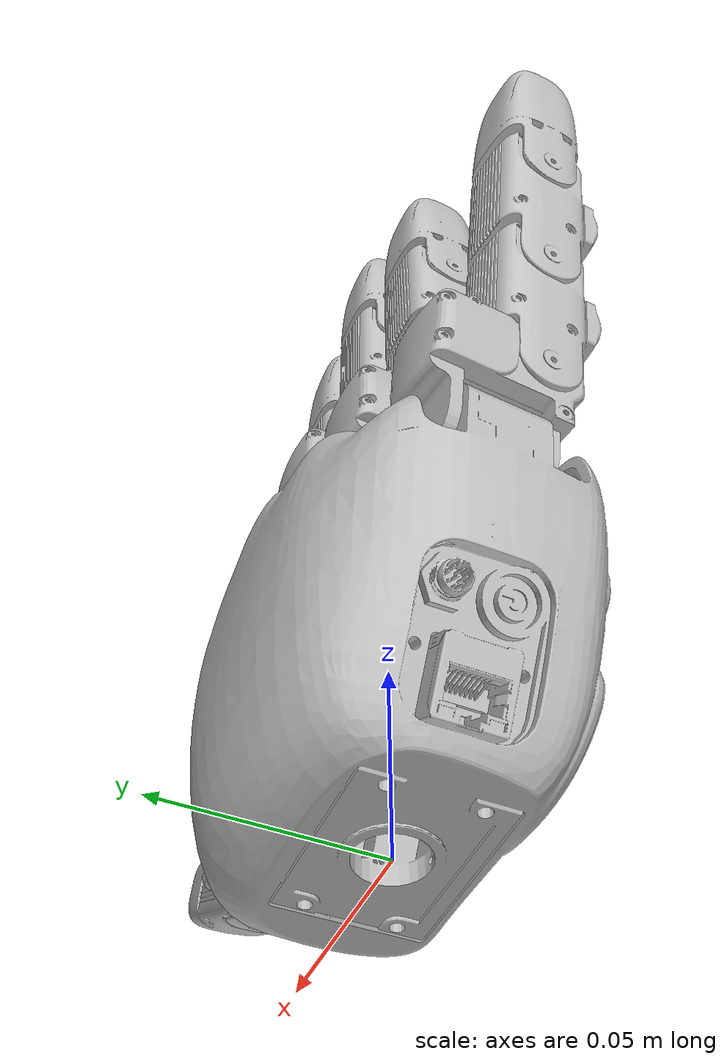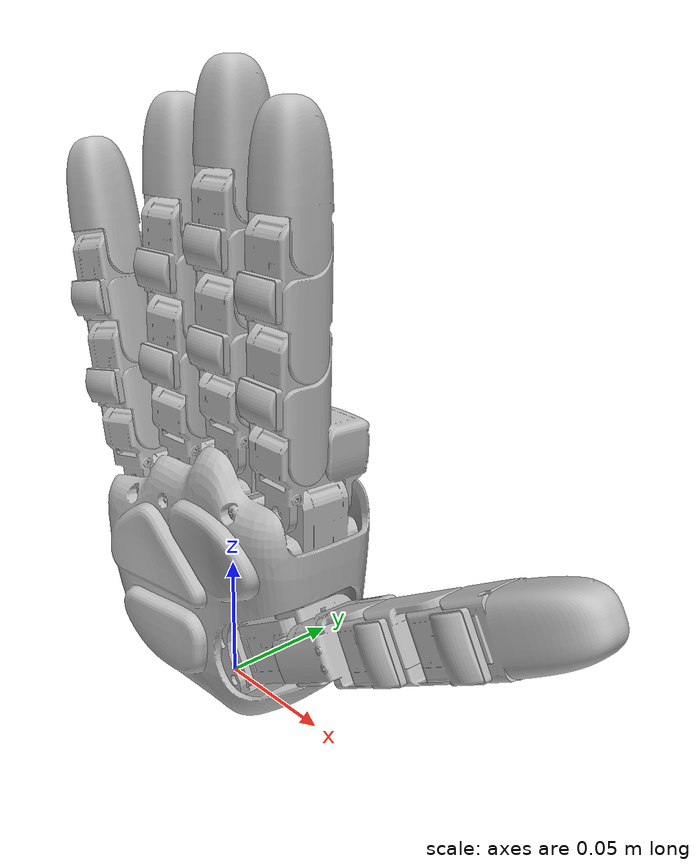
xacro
<?xml version="1.0"?>
<robot xmlns:xacro="http://www.ros.org/wiki/xacro" name="allegro_hand_v6">
    <xacro:arg name="ros2_control_hardware_type" default="hardware" />
    <xacro:arg name="hand" default="right" />
    <xacro:arg name="ah_prefix" default="" />
    <xacro:arg name="io_interface_descriptor" default="modbus_tcp:192.168.40.100:502" />
    <xacro:arg name="hand_id" default="1" />

    <xacro:property name="hand_arg" value="$(arg hand)"/>

    <xacro:if value="${hand_arg == 'right'}">
        <xacro:include filename="$(find allegro_hand_v6_description)/urdf/allegro_hand_v6_right.urdf.xacro" />
    </xacro:if>

    <xacro:if value="${hand_arg == 'left'}">
        <xacro:include filename="$(find allegro_hand_v6_description)/urdf/allegro_hand_v6_left.urdf.xacro" />
    </xacro:if>

    <xacro:include filename="$(find allegro_hand_v6_bringup)/config/single_hand/allegro_hand_v6_1.ros2_control.xacro" />
    <xacro:allegro_hand_v6_ros2_control name="allegro_hand" prefix="$(arg ah_prefix)" ros2_control_hardware_type="$(arg ros2_control_hardware_type)" io_interface_descriptor="$(arg io_interface_descriptor)" hand_id="$(arg hand_id)" hand="$(arg hand)"/>
</robot>

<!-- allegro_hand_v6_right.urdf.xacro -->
<robot xmlns:xacro="http://www.ros.org/wiki/xacro" name="allegro_hand_v6_right">
  <xacro:include filename="$(find allegro_hand_v6_description)/urdf/allegro_hand_v6_right.urdf" />
</robot>

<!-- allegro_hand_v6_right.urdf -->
<robot name="allegro_hand_v6_right">
  <link name="base_link">
    <inertial>
      <origin xyz="0.00184230424029894 -0.00313698136551967 0.0554922594614504" rpy="0 0 0" />
      <mass value="0.450028226555743" />
      <inertia ixx="0.000147963501718496" ixy="-1.56300579074899E-06" ixz="-2.49352924280155E-05" iyy="0.000305633870983255" iyz="5.63021652290232E-07" izz="0.000179183478753193" />
    </inertial>
    <visual>
      <origin xyz="0 0 0" rpy="0 0 0" />
      <geometry>
        <mesh filename="package://allegro_hand_v6_description/meshes/Palm.STL" />
      </geometry>
      <material name="">
        <color rgba="0.752941176470588 0.752941176470588 0.752941176470588 1" />
      </material>
    </visual>
    <collision>
      <origin xyz="0 0 0" rpy="0 0 0" />
      <geometry>
        <mesh filename="package://allegro_hand_v6_description/meshes/Palm.STL" />
      </geometry>
    </collision>
  </link>
  <link name="Finger01_Link01">
    <inertial>
      <origin xyz="-0.0239829867858055 -0.000306359201455619 -0.0114422632777329" rpy="0 0 0" />
      <mass value="0.0417463971762565" />
      <inertia ixx="4.44015486690548E-06" ixy="1.5758654259387E-07" ixz="-2.64990330601882E-08" iyy="1.99009103900125E-06" iyz="4.1409767136071E-09" izz="3.75496404596589E-06" />
    </inertial>
    <visual>
      <origin xyz="0 0 0" rpy="0 0 0" />
      <geometry>
        <mesh filename="package://allegro_hand_v6_description/meshes/Finger01_Link01.STL" />
      </geometry>
      <material name="">
        <color rgba="0.752941176470588 0.752941176470588 0.752941176470588 1" />
      </material>
    </visual>
    <collision>
      <origin xyz="0 0 0" rpy="0 0 0" />
      <geometry>
        <mesh filename="package://allegro_hand_v6_description/meshes/Finger01_Link01.STL" />
      </geometry>
    </collision>
  </link>
  <joint name="joint00" type="revolute">
    <origin xyz="0.0515458963924172 -0.00186273945692013 0.0252954584404881" rpy="-3.12285472680256 0.523294580872748 3.14159265358979" />
    <parent link="base_link" />
    <child link="Finger01_Link01" />
    <axis xyz="0 0 1" />
    <limit lower="-0.0349066" upper="1.6580628" effort="15" velocity="7" />
  </joint>
  <link name="Finger01_Link02">
    <inertial>
      <origin xyz="-0.000134853955672323 -0.00250894377660173 0.0250674884215867" rpy="0 0 0" />
      <mass value="0.0104892099893563" />
      <inertia ixx="8.62204829341335E-07" ixy="8.35499631624565E-09" ixz="-8.76207386578638E-08" iyy="8.43158028428824E-07" iyz="1.02386301679916E-07" izz="5.63497147697149E-07" />
    </inertial>
    <visual>
      <origin xyz="0 0 0" rpy="0 0 0" />
      <geometry>
        <mesh filename="package://allegro_hand_v6_description/meshes/Finger01_Link02.STL" />
      </geometry>
      <material name="">
        <color rgba="0.752941176470588 0.752941176470588 0.752941176470588 1" />
      </material>
    </visual>
    <collision>
      <origin xyz="0 0 0" rpy="0 0 0" />
      <geometry>
        <mesh filename="package://allegro_hand_v6_description/meshes/Finger01_Link02.STL" />
      </geometry>
    </collision>
  </link>
  <joint name="joint01" type="revolute">
    <origin xyz="-0.0166177655792123 -0.0120457406229064 -0.0117000000000025" rpy="-1.57079632679487 -1.55204852359714 1.60326086932927" />
    <parent link="Finger01_Link01" />
    <child link="Finger01_Link02" />
    <axis xyz="0 0 1" />
    <limit lower="-1.6580628" upper="1.6580628" effort="15" velocity="7" />
  </joint>
  <link name="Finger01_Link03">
    <inertial>
      <origin xyz="-0.0113384084768696 -0.000301529767556679 -0.0116212236141954" rpy="0 0 0" />
      <mass value="0.0356042266490495" />
      <inertia ixx="1.53411371984515E-06" ixy="-1.79788493596429E-07" ixz="-1.20209060375391E-07" iyy="4.57635845809962E-06" iyz="2.95776700567886E-08" izz="5.03437303700778E-06" />
    </inertial>
    <visual>
      <origin xyz="0 0 0" rpy="0 0 0" />
      <geometry>
        <mesh filename="package://allegro_hand_v6_description/meshes/Finger01_Link03.STL" />
      </geometry>
      <material name="">
        <color rgba="0.752941176470588 0.752941176470588 0.752941176470588 1" />
      </material>
    </visual>
    <collision>
      <origin xyz="0 0 0" rpy="0 0 0" />
      <geometry>
        <mesh filename="package://allegro_hand_v6_description/meshes/Finger01_Link03.STL" />
      </geometry>
    </collision>
  </link>
  <joint name="joint02" type="revolute">
    <origin xyz="0.0121978560340643 -0.000228709800638669 0.0402" rpy="-1.5707963267949 1.53833178426049 -1.58954412999264" />
    <parent link="Finger01_Link02" />
    <child link="Finger01_Link03" />
    <axis xyz="0 0 1" />
    <limit lower="-0.1745329" upper="1.3089969" effort="15" velocity="7" />
  </joint>
  <link name="Finger01_Link04">
    <inertial>
      <origin xyz="-0.018416915594039 -0.000283029245951282 -0.0116267997314829" rpy="0 0 0" />
      <mass value="0.0472610997534158" />
      <inertia ixx="2.33532626479402E-06" ixy="-1.22709886487407E-07" ixz="-1.24909563346313E-07" iyy="5.08634358682374E-06" iyz="2.91951245111122E-08" izz="5.06514069278925E-06" />
    </inertial>
    <visual>
      <origin xyz="0 0 0" rpy="0 0 0" />
      <geometry>
        <mesh filename="package://allegro_hand_v6_description/meshes/Finger01_Link04.STL" />
      </geometry>
      <material name="">
        <color rgba="0.752941176470588 0.752941176470588 0.752941176470588 1" />
      </material>
    </visual>
    <collision>
      <origin xyz="0 0 0" rpy="0 0 0" />
      <geometry>
        <mesh filename="package://allegro_hand_v6_description/meshes/Finger01_Link04.STL" />
      </geometry>
    </collision>
  </link>
  <joint name="joint03" type="revolute">
    <origin xyz="-0.0354812940922435 -0.00115228882652339 0" rpy="0 0 0" />
    <parent link="Finger01_Link03" />
    <child link="Finger01_Link04" />
    <axis xyz="0 0 1" />
    <limit lower="-0.1745329" upper="1.3962634" effort="15" velocity="7" />
  </joint>
  <link name="Finger02_Link01">
    <inertial>
      <origin xyz="0.000709041633831113 0.0185170806102581 0.0157296116249979" rpy="0 0 0" />
      <mass value="0.0362529514361211" />
      <inertia ixx="4.3940641429617E-06" ixy="2.01762707788196E-08" ixz="1.2115858104399E-07" iyy="3.39720068440709E-06" iyz="-1.7605735358543E-07" izz="2.1054632083192E-06" />
    </inertial>
    <visual>
      <origin xyz="0 0 0" rpy="0 0 0" />
      <geometry>
        <mesh filename="package://allegro_hand_v6_description/meshes/Finger02_Link01.STL" />
      </geometry>
      <material name="">
        <color rgba="0.752941176470588 0.752941176470588 0.752941176470588 1" />
      </material>
    </visual>
    <collision>
      <origin xyz="0 0 0" rpy="0 0 0" />
      <geometry>
        <mesh filename="package://allegro_hand_v6_description/meshes/Finger02_Link01.STL" />
      </geometry>
    </collision>
  </link>
  <joint name="joint10" type="revolute">
    <origin xyz="0.0448192191986822 -0.0143208213684815 0.0915000000000002" rpy="1.5707963267949 0 3.10411021689813" />
    <parent link="base_link" />
    <child link="Finger02_Link01" />
    <axis xyz="0 0 1" />
    <limit lower="-0.3839724" upper="1.3089969" effort="15" velocity="7" />
  </joint>
  <link name="Finger02_Link02">
    <inertial>
      <origin xyz="-6.65850196290094E-05 -0.0240876562414407 0.011594529202684" rpy="0 0 0" />
      <mass value="0.0357082521169613" />
      <inertia ixx="4.58527750121543E-06" ixy="-8.07241218453705E-08" ixz="3.34683308140124E-08" iyy="1.52610964198425E-06" iyz="-1.19180956497489E-07" izz="5.03458230160598E-06" />
    </inertial>
    <visual>
      <origin xyz="0 0 0" rpy="0 0 0" />
      <geometry>
        <mesh filename="package://allegro_hand_v6_description/meshes/Finger02_Link02.STL" />
      </geometry>
      <material name="">
        <color rgba="0.752941176470588 0.752941176470588 0.752941176470588 1" />
      </material>
    </visual>
    <collision>
      <origin xyz="0 0 0" rpy="0 0 0" />
      <geometry>
        <mesh filename="package://allegro_hand_v6_description/meshes/Finger02_Link02.STL" />
      </geometry>
    </collision>
  </link>
  <joint name="joint11" type="revolute">
    <origin xyz="0.0122000000000267 0.0209999999999989 0.00490000000000196" rpy="-1.57512531986377 1.57079630572147 1.56646733372602" />
    <parent link="Finger02_Link01" />
    <child link="Finger02_Link02" />
    <axis xyz="0 0 1" />
    <limit lower="-0.0698132" upper="1.5707963" effort="15" velocity="7" />
  </joint>
  <link name="Finger02_Link03">
    <inertial>
      <origin xyz="-6.65850194792646E-05 -0.0240876562413459 0.0115945292025172" rpy="0 0 0" />
      <mass value="0.0357082521175749" />
      <inertia ixx="4.58527750122232E-06" ixy="-8.07241218559247E-08" ixz="3.3468330809611E-08" iyy="1.52610964203967E-06" iyz="-1.19180956498736E-07" izz="5.03458230167055E-06" />
    </inertial>
    <visual>
      <origin xyz="0 0 0" rpy="0 0 0" />
      <geometry>
        <mesh filename="package://allegro_hand_v6_description/meshes/Finger02_Link03.STL" />
      </geometry>
      <material name="">
        <color rgba="0.752941176470588 0.752941176470588 0.752941176470588 1" />
      </material>
    </visual>
    <collision>
      <origin xyz="0 0 0" rpy="0 0 0" />
      <geometry>
        <mesh filename="package://allegro_hand_v6_description/meshes/Finger02_Link03.STL" />
      </geometry>
    </collision>
  </link>
  <joint name="joint12" type="revolute">
    <origin xyz="0 -0.0355000000000008 0" rpy="0 0 0" />
    <parent link="Finger02_Link02" />
    <child link="Finger02_Link03" />
    <axis xyz="0 0 1" />
    <limit lower="-0.1745329" upper="1.3962634" effort="15" velocity="7" />
  </joint>
  <link name="Finger02_Link04">
    <inertial>
      <origin xyz="-0.000492316779747967 -0.0226575605376795 0.0125097134134445" rpy="0 0 0" />
      <mass value="0.0213701839615071" />
      <inertia ixx="2.42428496688208E-06" ixy="-8.66325853117961E-08" ixz="3.50586594259155E-11" iyy="1.22532835399419E-06" iyz="-8.99601789908348E-08" izz="1.80436589718125E-06" />
    </inertial>
    <visual>
      <origin xyz="0 0 0" rpy="0 0 0" />
      <geometry>
        <mesh filename="package://allegro_hand_v6_description/meshes/Finger02_Link04.STL" />
      </geometry>
      <material name="">
        <color rgba="0.752941176470588 0.752941176470588 0.752941176470588 1" />
      </material>
    </visual>
    <collision>
      <origin xyz="0 0 0" rpy="0 0 0" />
      <geometry>
        <mesh filename="package://allegro_hand_v6_description/meshes/Finger02_Link04.STL" />
      </geometry>
    </collision>
  </link>
  <joint name="joint13" type="revolute">
    <origin xyz="0 -0.0354999999999992 0" rpy="0 0 0" />
    <parent link="Finger02_Link03" />
    <child link="Finger02_Link04" />
    <axis xyz="0 0 1" />
    <limit lower="-0.1745329" upper="1.3962634" effort="15" velocity="7" />
  </joint>
  <link name="Finger03_Link01">
    <inertial>
      <origin xyz="0.000709042662020216 0.0185170814550095 0.0157296112392842" rpy="0 0 0" />
      <mass value="0.0362529543058765" />
      <inertia ixx="4.39406433407738E-06" ixy="2.0176234503521E-08" ixz="1.21158609714526E-07" iyy="3.39720096472722E-06" iyz="-1.76057555269767E-07" izz="2.10546318294146E-06" />
    </inertial>
    <visual>
      <origin xyz="0 0 0" rpy="0 0 0" />
      <geometry>
        <mesh filename="package://allegro_hand_v6_description/meshes/Finger03_Link01.STL" />
      </geometry>
      <material name="">
        <color rgba="0.752941176470588 0.752941176470588 0.752941176470588 1" />
      </material>
    </visual>
    <collision>
      <origin xyz="0 0 0" rpy="0 0 0" />
      <geometry>
        <mesh filename="package://allegro_hand_v6_description/meshes/Finger03_Link01.STL" />
      </geometry>
    </collision>
  </link>
  <joint name="joint20" type="revolute">
    <origin xyz="0.0149999999999994 -0.0132000000000003 0.103500000000001" rpy="1.5707963267949 0 3.14159265358979" />
    <parent link="base_link" />
    <child link="Finger03_Link01" />
    <axis xyz="0 0 1" />
    <limit lower="-1.134464" upper="1.134464" effort="15" velocity="7" />
  </joint>
  <link name="Finger03_Link02">
    <inertial>
      <origin xyz="-0.0240876525947505 6.65875884343237E-05 0.0115945377091467" rpy="0 0 0" />
      <mass value="0.0357082754843776" />
      <inertia ixx="1.52611057006049E-06" ixy="8.07258309320929E-08" ixz="-1.1918140232535E-07" iyy="4.58528094923996E-06" iyz="-3.34681642093523E-08" izz="5.03458674970465E-06" />
    </inertial>
    <visual>
      <origin xyz="0 0 0" rpy="0 0 0" />
      <geometry>
        <mesh filename="package://allegro_hand_v6_description/meshes/Finger03_Link02.STL" />
      </geometry>
      <material name="">
        <color rgba="0.752941176470588 0.752941176470588 0.752941176470588 1" />
      </material>
    </visual>
    <collision>
      <origin xyz="0 0 0" rpy="0 0 0" />
      <geometry>
        <mesh filename="package://allegro_hand_v6_description/meshes/Finger03_Link02.STL" />
      </geometry>
    </collision>
  </link>
  <joint name="joint21" type="revolute">
    <origin xyz="0.0122000000000265 0.0209999999999993 0.00490000000000103" rpy="1.5707963267949 0 -1.5707963267949" />
    <parent link="Finger03_Link01" />
    <child link="Finger03_Link02" />
    <axis xyz="0 0 1" />
    <limit lower="-0.0698132" upper="1.5707963" effort="15" velocity="7" />
  </joint>
  <link name="Finger03_Link03">
    <inertial>
      <origin xyz="-0.0240876525947932 6.65875884964633E-05 0.0115945377092155" rpy="0 0 0" />
      <mass value="0.0357082754840991" />
      <inertia ixx="1.52611057003866E-06" ixy="8.0725830927929E-08" ixz="-1.19181402325396E-07" iyy="4.58528094923644E-06" iyz="-3.34681642086831E-08" izz="5.03458674967899E-06" />
    </inertial>
    <visual>
      <origin xyz="0 0 0" rpy="0 0 0" />
      <geometry>
        <mesh filename="package://allegro_hand_v6_description/meshes/Finger03_Link03.STL" />
      </geometry>
      <material name="">
        <color rgba="0.752941176470588 0.752941176470588 0.752941176470588 1" />
      </material>
    </visual>
    <collision>
      <origin xyz="0 0 0" rpy="0 0 0" />
      <geometry>
        <mesh filename="package://allegro_hand_v6_description/meshes/Finger03_Link03.STL" />
      </geometry>
    </collision>
  </link>
  <joint name="joint22" type="revolute">
    <origin xyz="-0.0355000000000005 0 0" rpy="0 0 0" />
    <parent link="Finger03_Link02" />
    <child link="Finger03_Link03" />
    <axis xyz="0 0 1" />
    <limit lower="-0.1745329" upper="1.3962634" effort="15" velocity="7" />
  </joint>
  <link name="Finger03_Link04">
    <inertial>
      <origin xyz="-0.0226574160204233 0.000492291119330851 0.0125097633112662" rpy="0 0 0" />
      <mass value="0.0213700373329456" />
      <inertia ixx="1.22531871261578E-06" ixy="8.66343000311873E-08" ixz="-8.99525392941416E-08" iyy="2.42426618489787E-06" iyz="-3.32615342526218E-11" izz="1.80435906075016E-06" />
    </inertial>
    <visual>
      <origin xyz="0 0 0" rpy="0 0 0" />
      <geometry>
        <mesh filename="package://allegro_hand_v6_description/meshes/Finger03_Link04.STL" />
      </geometry>
      <material name="">
        <color rgba="0.752941176470588 0.752941176470588 0.752941176470588 1" />
      </material>
    </visual>
    <collision>
      <origin xyz="0 0 0" rpy="0 0 0" />
      <geometry>
        <mesh filename="package://allegro_hand_v6_description/meshes/Finger03_Link04.STL" />
      </geometry>
    </collision>
  </link>
  <joint name="joint23" type="revolute">
    <origin xyz="-0.0354999999999995 0 0" rpy="0 0 0" />
    <parent link="Finger03_Link03" />
    <child link="Finger03_Link04" />
    <axis xyz="0 0 1" />
    <limit lower="-0.1745329" upper="1.3962634" effort="15" velocity="7" />
  </joint>
  <link name="Finger04_Link01">
    <inertial>
      <origin xyz="0.000709042218750322 0.0185170813158903 0.0157296112193223" rpy="0 0 0" />
      <mass value="0.0362529507040542" />
      <inertia ixx="4.39406375108611E-06" ixy="2.0176277604623E-08" ixz="1.2115868874959E-07" iyy="3.39720048647218E-06" iyz="-1.76057626204873E-07" izz="2.10546313639733E-06" />
    </inertial>
    <visual>
      <origin xyz="0 0 0" rpy="0 0 0" />
      <geometry>
        <mesh filename="package://allegro_hand_v6_description/meshes/Finger04_Link01.STL" />
      </geometry>
      <material name="">
        <color rgba="0.752941176470588 0.752941176470588 0.752941176470588 1" />
      </material>
    </visual>
    <collision>
      <origin xyz="0 0 0" rpy="0 0 0" />
      <geometry>
        <mesh filename="package://allegro_hand_v6_description/meshes/Finger04_Link01.STL" />
      </geometry>
    </collision>
  </link>
  <joint name="joint30" type="revolute">
    <origin xyz="-0.0148192191986825 -0.0143208213684817 0.0915000000000011" rpy="1.5707963267949 0 -3.10411021689813" />
    <parent link="base_link" />
    <child link="Finger04_Link01" />
    <axis xyz="0 0 1" />
    <limit lower="-1.3089969" upper="0.3839724" effort="15" velocity="7" />
  </joint>
  <link name="Finger04_Link02">
    <inertial>
      <origin xyz="-0.0240876492001388 6.65885749922407E-05 0.0115945532290043" rpy="0 0 0" />
      <mass value="0.0357083022733814" />
      <inertia ixx="1.52611133682439E-06" ixy="8.07265268818572E-08" ixz="-1.19181759501869E-07" iyy="4.58528638908415E-06" iyz="-3.34683247610655E-08" izz="5.03459262408487E-06" />
    </inertial>
    <visual>
      <origin xyz="0 0 0" rpy="0 0 0" />
      <geometry>
        <mesh filename="package://allegro_hand_v6_description/meshes/Finger04_Link02.STL" />
      </geometry>
      <material name="">
        <color rgba="0.752941176470588 0.752941176470588 0.752941176470588 1" />
      </material>
    </visual>
    <collision>
      <origin xyz="0 0 0" rpy="0 0 0" />
      <geometry>
        <mesh filename="package://allegro_hand_v6_description/meshes/Finger04_Link02.STL" />
      </geometry>
    </collision>
  </link>
  <joint name="joint31" type="revolute">
    <origin xyz="0.012199999999999 0.0209999999999993 0.00490000000000129" rpy="1.5707963267949 0 -1.5707963267949" />
    <parent link="Finger04_Link01" />
    <child link="Finger04_Link02" />
    <axis xyz="0 0 1" />
    <limit lower="-0.0698132" upper="1.5707963" effort="15" velocity="7" />
  </joint>
  <link name="Finger04_Link03">
    <inertial>
      <origin xyz="-0.02408764920007 6.65885748804326E-05 0.0115945532291518" rpy="0 0 0" />
      <mass value="0.0357083022738288" />
      <inertia ixx="1.52611133686558E-06" ixy="8.07265268796716E-08" ixz="-1.1918175950219E-07" iyy="4.58528638908789E-06" iyz="-3.3468324764712E-08" izz="5.0345926241314E-06" />
    </inertial>
    <visual>
      <origin xyz="0 0 0" rpy="0 0 0" />
      <geometry>
        <mesh filename="package://allegro_hand_v6_description/meshes/Finger04_Link03.STL" />
      </geometry>
      <material name="">
        <color rgba="0.752941176470588 0.752941176470588 0.752941176470588 1" />
      </material>
    </visual>
    <collision>
      <origin xyz="0 0 0" rpy="0 0 0" />
      <geometry>
        <mesh filename="package://allegro_hand_v6_description/meshes/Finger04_Link03.STL" />
      </geometry>
    </collision>
  </link>
  <joint name="joint32" type="revolute">
    <origin xyz="-0.0355000000000005 0 0" rpy="0 0 0" />
    <parent link="Finger04_Link02" />
    <child link="Finger04_Link03" />
    <axis xyz="0 0 1" />
    <limit lower="-0.1745329" upper="1.3962634" effort="15" velocity="7" />
  </joint>
  <link name="Finger04_Link04">
    <inertial>
      <origin xyz="-0.0226575661576108 0.000492319366731348 0.0125097243351468" rpy="0 0 0" />
      <mass value="0.0213701865685114" />
      <inertia ixx="1.22532726153058E-06" ixy="8.6631478965748E-08" ixz="-8.99589805535805E-08" iyy="2.42428574655794E-06" iyz="-3.54672625052509E-11" izz="1.80436751817095E-06" />
    </inertial>
    <visual>
      <origin xyz="0 0 0" rpy="0 0 0" />
      <geometry>
        <mesh filename="package://allegro_hand_v6_description/meshes/Finger04_Link04.STL" />
      </geometry>
      <material name="">
        <color rgba="0.752941176470588 0.752941176470588 0.752941176470588 1" />
      </material>
    </visual>
    <collision>
      <origin xyz="0 0 0" rpy="0 0 0" />
      <geometry>
        <mesh filename="package://allegro_hand_v6_description/meshes/Finger04_Link04.STL" />
      </geometry>
    </collision>
  </link>
  <joint name="joint33" type="revolute">
    <origin xyz="-0.0354999999999995 0 0" rpy="0 0 0" />
    <parent link="Finger04_Link03" />
    <child link="Finger04_Link04" />
    <axis xyz="0 0 1" />
    <limit lower="-0.1745329" upper="1.3962634" effort="15" velocity="7" />
  </joint>
  <link name="Finger05_Link01">
    <inertial>
      <origin xyz="0.00391372793288855 0.0181126410611072 0.0157296086284681" rpy="0 0 0" />
      <mass value="0.0362529413234168" />
      <inertia ixx="4.37090289923819E-06" ixy="-1.51513964837452E-07" ixz="8.87467754704318E-08" iyy="3.42035749185639E-06" iyz="-1.94422661809506E-07" izz="2.10546250535199E-06" />
    </inertial>
    <visual>
      <origin xyz="0 0 0" rpy="0 0 0" />
      <geometry>
        <mesh filename="package://allegro_hand_v6_description/meshes/Finger05_Link01.STL" />
      </geometry>
      <material name="">
        <color rgba="0.752941176470588 0.752941176470588 0.752941176470588 1" />
      </material>
    </visual>
    <collision>
      <origin xyz="0 0 0" rpy="0 0 0" />
      <geometry>
        <mesh filename="package://allegro_hand_v6_description/meshes/Finger05_Link01.STL" />
      </geometry>
    </collision>
  </link>
  <joint name="joint40" type="revolute">
    <origin xyz="-0.0444714502324283 -0.0165473302342995 0.076000000000001" rpy="1.5707963267949 0 -3.06673280587903" />
    <parent link="base_link" />
    <child link="Finger05_Link01" />
    <axis xyz="0 0 1" />
    <limit lower="-1.3089969" upper="0.4363323" effort="15" velocity="7" />
  </joint>
  <link name="Finger05_Link02">
    <inertial>
      <origin xyz="-0.0240864045666482 -0.000247071253142912 0.0115945843536743" rpy="0 0 0" />
      <mass value="0.0357086454594363" />
      <inertia ixx="1.52453790164529E-06" ixy="4.08667496281399E-08" ixz="-1.18738446125536E-07" iyy="4.58691339445876E-06" iyz="-3.5015123631194E-08" izz="5.03464045630809E-06" />
    </inertial>
    <visual>
      <origin xyz="0 0 0" rpy="0 0 0" />
      <geometry>
        <mesh filename="package://allegro_hand_v6_description/meshes/Finger05_Link02.STL" />
      </geometry>
      <material name="">
        <color rgba="0.752941176470588 0.752941176470588 0.752941176470588 1" />
      </material>
    </visual>
    <collision>
      <origin xyz="0 0 0" rpy="0 0 0" />
      <geometry>
        <mesh filename="package://allegro_hand_v6_description/meshes/Finger05_Link02.STL" />
      </geometry>
    </collision>
  </link>
  <joint name="joint41" type="revolute">
    <origin xyz="0.0156612663177804 0.0185624550457146 0.00490000000000104" rpy="1.5707963267949 0.0130228770687082 -1.74532925199433" />
    <parent link="Finger05_Link01" />
    <child link="Finger05_Link02" />
    <axis xyz="0 0 1" />
    <limit lower="-0.0698132" upper="1.5707963" effort="15" velocity="7" />
  </joint>
  <link name="Finger05_Link03">
    <inertial>
      <origin xyz="-0.0240864045666482 -0.000247071253143312 0.011594584353673" rpy="0 0 0" />
      <mass value="0.0357086454594364" />
      <inertia ixx="1.5245379016453E-06" ixy="4.08667496281404E-08" ixz="-1.18738446125543E-07" iyy="4.58691339445878E-06" iyz="-3.50151236311938E-08" izz="5.03464045630811E-06" />
    </inertial>
    <visual>
      <origin xyz="0 0 0" rpy="0 0 0" />
      <geometry>
        <mesh filename="package://allegro_hand_v6_description/meshes/Finger05_Link03.STL" />
      </geometry>
      <material name="">
        <color rgba="0.752941176470588 0.752941176470588 0.752941176470588 1" />
      </material>
    </visual>
    <collision>
      <origin xyz="0 0 0" rpy="0 0 0" />
      <geometry>
        <mesh filename="package://allegro_hand_v6_description/meshes/Finger05_Link03.STL" />
      </geometry>
    </collision>
  </link>
  <joint name="joint42" type="revolute">
    <origin xyz="-0.0354969897254881 -0.000462299068386607 0" rpy="0 0 0" />
    <parent link="Finger05_Link02" />
    <child link="Finger05_Link03" />
    <axis xyz="0 0 1" />
    <limit lower="-0.1745329" upper="1.3962634" effort="15" velocity="7" />
  </joint>
  <link name="Finger05_Link04">
    <inertial>
      <origin xyz="-0.0226622001413162 0.000197312555384529 0.0125097520563989" rpy="0 0 0" />
      <mass value="0.0213706229429105" />
      <inertia ixx="1.22330197993977E-06" ixy="7.09850645182993E-08" ixz="-8.99418042796587E-08" iyy="2.42640568365994E-06" iyz="-1.21050133947373E-09" izz="1.80440838494788E-06" />
    </inertial>
    <visual>
      <origin xyz="0 0 0" rpy="0 0 0" />
      <geometry>
        <mesh filename="package://allegro_hand_v6_description/meshes/Finger05_Link04.STL" />
      </geometry>
      <material name="">
        <color rgba="0.752941176470588 0.752941176470588 0.752941176470588 1" />
      </material>
    </visual>
    <collision>
      <origin xyz="0 0 0" rpy="0 0 0" />
      <geometry>
        <mesh filename="package://allegro_hand_v6_description/meshes/Finger05_Link04.STL" />
      </geometry>
    </collision>
  </link>
  <joint name="joint43" type="revolute">
    <origin xyz="-0.0354969897254871 -0.000462299068385486 0" rpy="0 0 0" />
    <parent link="Finger05_Link03" />
    <child link="Finger05_Link04" />
    <axis xyz="0 0 1" />
    <limit lower="-0.1745329" upper="1.3962634" effort="15" velocity="7" />
  </joint>
</robot>
